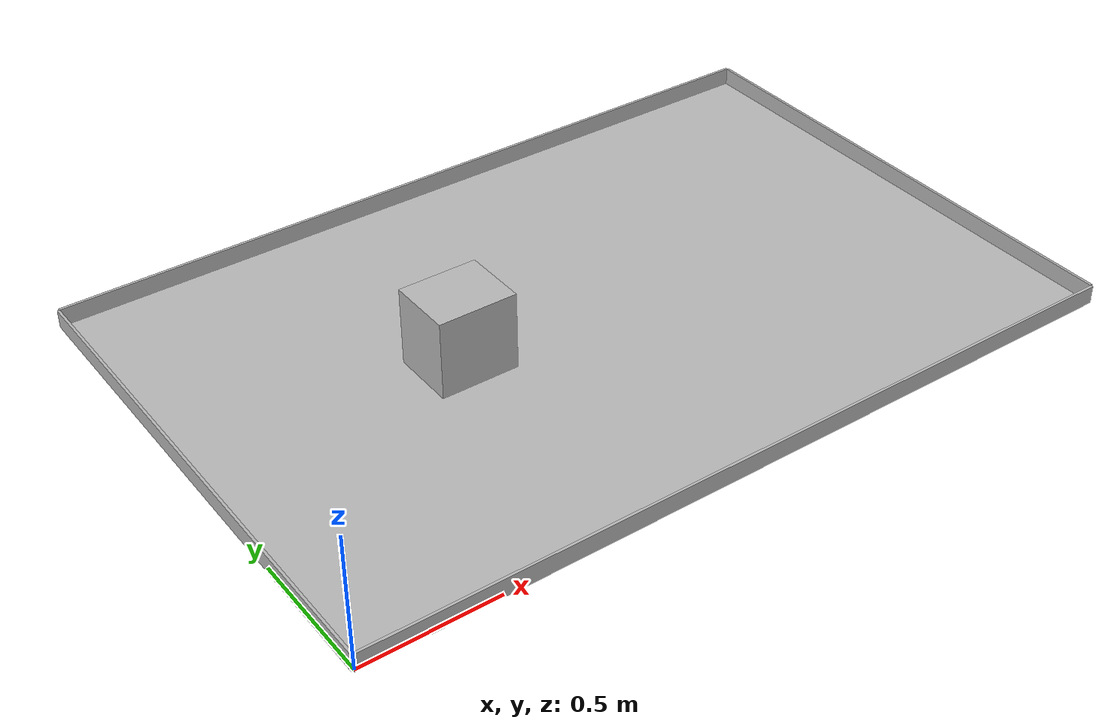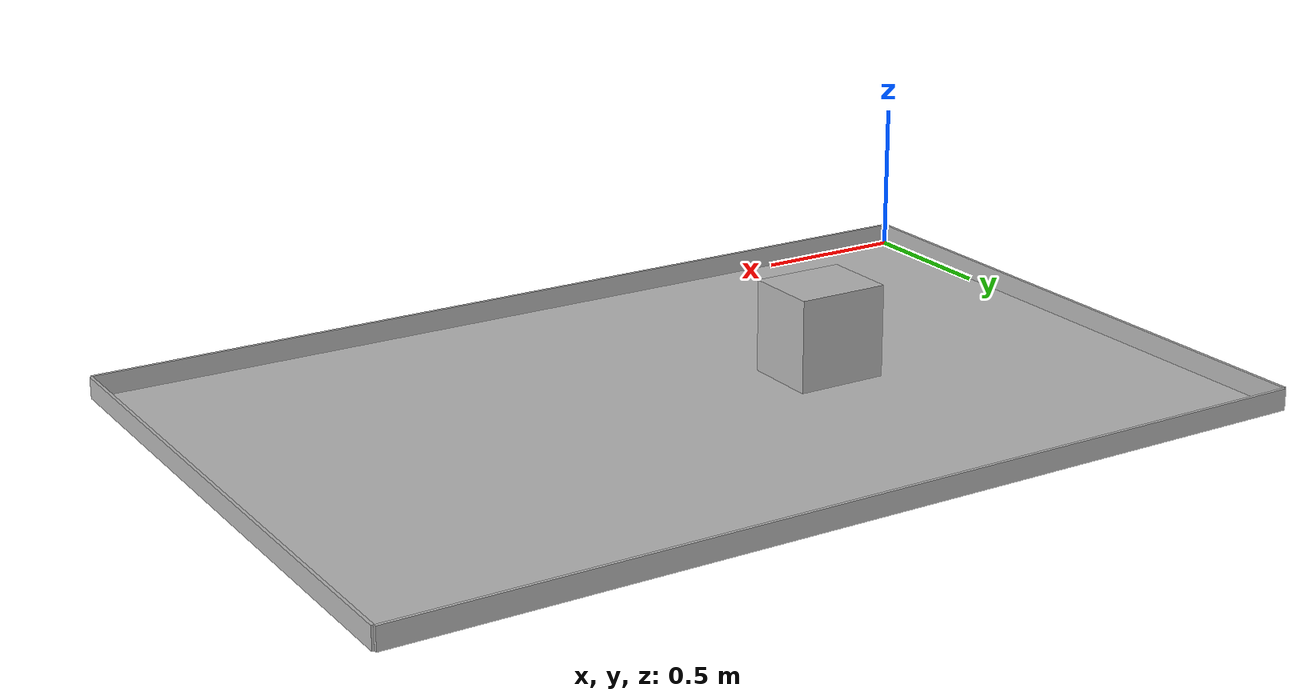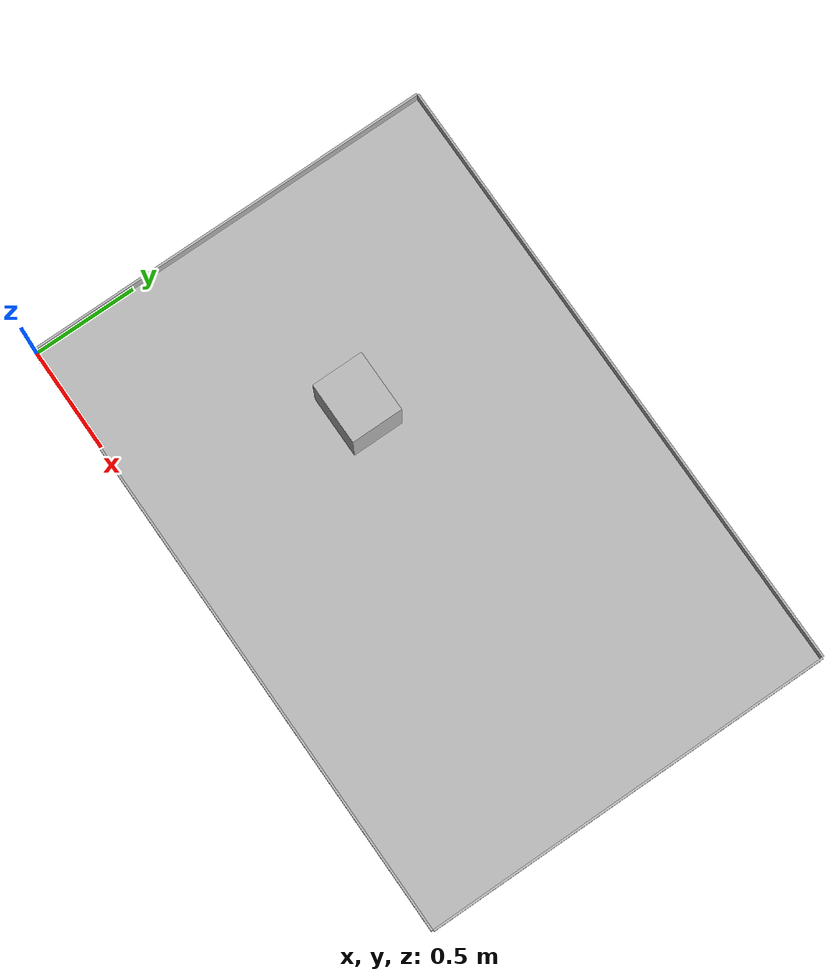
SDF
<sdf version='1.4'>
  <world name='rgsim'>
    <!-- A global light source -->
    <include>
      <uri>model://sun</uri>
    </include>

    <scene>
      <ambient>0.4 0.4 0.4 1</ambient>
      <background>0.7 0.7 0.7 1</background>
      <shadows>1</shadows>
    </scene>

    <include>
      <uri>model://arena</uri>
      <pose>0 0 0 0 0 0</pose>
    </include>

    <include>
      <uri>model://robot</uri>
      <pose>1 1 0 0 0 0</pose>
    </include>

    <gravity>0 0 -9.8</gravity>
    <magnetic_field>6e-06 2.3e-05 -4.2e-05</magnetic_field>
    <atmosphere type='adiabatic'/>

    <!-- WGS84 latlon coordinates -->
    <spherical_coordinates>
      <surface_model>EARTH_WGS84</surface_model>
      <latitude_deg>0</latitude_deg>
      <longitude_deg>0</longitude_deg>
      <elevation>0</elevation>
      <heading_deg>0</heading_deg>
    </spherical_coordinates>

    <physics name='default_physics' default='0' type='ode'>
      <max_step_size>0.001</max_step_size>
      <real_time_factor>1</real_time_factor>
      <real_time_update_rate>1000</real_time_update_rate>
    </physics>
  </world>
</sdf>

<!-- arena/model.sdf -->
<sdf version='1.6'>
  <model name='arena'>
    <static>1</static>

    <link name='ground'>
      <pose frame=''>1.5 1 0 0 0 0</pose>
      <collision name='collision'>
        <geometry>
          <plane>
            <normal>0 0 1</normal>
            <size>3 2</size>
          </plane>
        </geometry>
        <surface>
          <friction>
            <ode>
              <mu>100</mu>
              <mu2>50</mu2>
            </ode>
          </friction>
        </surface>
      </collision>
      <visual name='visual'>
        <cast_shadows>0</cast_shadows>
        <geometry>
          <plane>
            <normal>0 0 1</normal>
            <size>3 2</size>
          </plane>
        </geometry>
      </visual>
    </link>

    <link name='wall_1'>
      <pose>1.50 -0.005 0.035 0 0 0</pose>
      <visual name='visual'>
        <geometry>
          <box>
            <size>3.005 0.01 0.07</size>
          </box>
        </geometry>
      </visual>
      <collision name='collision'>
        <geometry>
          <box>
            <size>3.005 0.01 0.07</size>
          </box>
        </geometry>
      </collision>
    </link>

    <link name='wall_2'>
      <pose>1.50 2.005 0.035 0 0 0</pose>
      <visual name='visual'>
        <geometry>
          <box>
            <size>3.005 0.01 0.07</size>
          </box>
        </geometry>
      </visual>
      <collision name='collision'>
        <geometry>
          <box>
            <size>3.005 0.01 0.07</size>
          </box>
        </geometry>
      </collision>
    </link>

    <link name='wall_3'>
      <pose>-0.005 1 0.035 0 0 1.5708</pose>
      <visual name='visual'>
        <geometry>
          <box>
            <size>2 0.01 0.07</size>
          </box>
        </geometry>
        </visual>
      <collision name='collision'>
        <geometry>
          <box>
            <size>2 0.01 0.07</size>
          </box>
        </geometry>
        </collision>
    </link>

    <link name='wall_4'>
      <pose>3.005 1 0.035 0 -0 1.5708</pose>
      <visual name='visual'>
        <geometry>
          <box>
            <size>2 0.01 0.07</size>
          </box>
        </geometry>
      </visual>
      <collision name='collision'>
        <geometry>
          <box>
            <size>2 0.01 0.07</size>
          </box>
        </geometry>
      </collision>
    </link>
  </model>
</sdf>

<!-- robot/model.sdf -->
<sdf version='1.4'>
  <model name="robot">
    <static>false</static>

    <link name="chassis">
      <pose>0 0 .1 0 0 0</pose>
      <gravity>true</gravity>

      <inertial>
        <pose>0 0 0 0 0 0</pose>
        <mass>5</mass>
        <inertia>
          <ixx>0.092708</ixx>
          <ixy>0</ixy>
          <ixz>0</ixz>
          <iyy>0.104167</iyy>
          <iyz>0</iyz>
          <izz>0.063542</izz>
        </inertia>
      </inertial>

      <collision name="collision">
        <geometry>
          <box>
            <size>.3 .25 .4</size>
          </box>
        </geometry>
      </collision>

      <visual name="visual">
        <pose>0 0 0 0 0 0</pose>
        <geometry>
          <box>
            <size>.3 .25 .4</size>
          </box>
        </geometry>
      </visual>

      <collision name="caster_collision">
        <pose>-0.075 0 -0.2 0 0 0</pose>
        <geometry>
          <sphere>
            <radius>.05</radius>
          </sphere>
        </geometry>

        <surface>
          <friction>
            <ode>
              <mu>0</mu>
              <mu2>0</mu2>
              <slip1>1.0</slip1>
              <slip2>1.0</slip2>
            </ode>
          </friction>
        </surface>
      </collision>

      <visual name="caster_visual">
        <pose>-0.075 0 -0.2 0 0 0</pose>
        <geometry>
          <sphere>
            <radius>.05</radius>
          </sphere>
        </geometry>
      </visual>
    </link>

    <link name="left_wheel">
      <pose>0.1 0.13 -0.1 0 1.5707 1.5707</pose>
      <gravity>true</gravity>

      <inertial>
        <pose>0 0 0 0 0 0</pose>
        <mass>0.3</mass>
        <inertia>
          <ixx>0.00025</ixx>
          <ixy>0</ixy>
          <ixz>0</ixz>
          <iyy>0.00025</iyy>
          <iyz>0</iyz>
          <izz>0.000375</izz>
        </inertia>
      </inertial>

      <collision name="collision">
        <geometry>
          <cylinder>
            <radius>.05</radius>
            <length>.05</length>
          </cylinder>
        </geometry>
      </collision>

      <visual name="visual">
        <geometry>
          <cylinder>
            <radius>.05</radius>
            <length>.05</length>
          </cylinder>
        </geometry>
      </visual>
    </link>

    <joint type="revolute" name="left_wheel_hinge">
      <child>left_wheel</child>
      <parent>chassis</parent>
      <axis>
        <xyz>0 1 0</xyz>
      </axis>
    </joint>

    <link name="left_encoder_wheel">
      <pose>0.1 0.1 -0.1 0 1.5707 1.5707</pose>
      <gravity>true</gravity>

      <inertial>
        <pose>0 0 0 0 0 0</pose>
        <mass>0.03</mass>
        <inertia>
          <ixx>0.000019</ixx>
          <ixy>0</ixy>
          <ixz>0</ixz>
          <iyy>0.000019</iyy>
          <iyz>0</iyz>
          <izz>0.000038</izz>
        </inertia>
      </inertial>

      <collision name="collision">
        <geometry>
          <cylinder>
            <radius>.05</radius>
            <length>.005</length>
          </cylinder>
        </geometry>

        <surface>
          <friction>
            <ode>
              <mu>1</mu>
              <mu2>1</mu2>
              <slip1>0</slip1>
              <slip2>0</slip2>
            </ode>
          </friction>
        </surface>
      </collision>

      <visual name="visual">
        <geometry>
          <cylinder>
            <radius>.05</radius>
            <length>.005</length>
          </cylinder>
        </geometry>
      </visual>
    </link>

    <joint type="revolute" name="left_encoder">
      <child>left_encoder_wheel</child>
      <parent>chassis</parent>
      <axis>
        <xyz>0 1 0</xyz>
      </axis>
    </joint>

    <link name="right_wheel">
      <pose>0.1 -0.13 -0.1 0 1.5707 1.5707</pose>
      <gravity>true</gravity>

      <inertial>
        <pose>0 0 0 0 0 0</pose>
        <mass>0.3</mass>
        <inertia>
          <ixx>0.00025</ixx>
          <ixy>0</ixy>
          <ixz>0</ixz>
          <iyy>0.00025</iyy>
          <iyz>0</iyz>
          <izz>0.000375</izz>
        </inertia>
      </inertial>

      <collision name="collision">
        <geometry>
          <cylinder>
            <radius>.05</radius>
            <length>.05</length>
          </cylinder>
        </geometry>
      </collision>

      <visual name="visual">
        <geometry>
          <cylinder>
            <radius>.05</radius>
            <length>.05</length>
          </cylinder>
        </geometry>
      </visual>
    </link>

    <joint type="revolute" name="right_wheel_hinge">
      <child>right_wheel</child>
      <parent>chassis</parent>
      <axis>
        <xyz>0 1 0</xyz>
      </axis>
    </joint>

    <link name="right_encoder_wheel">
      <pose>0.1 -0.1 -0.1 0 1.5707 1.5707</pose>
      <gravity>true</gravity>

      <inertial>
        <pose>0 0 0 0 0 0</pose>
        <mass>0.03</mass>
        <inertia>
          <ixx>0.000019</ixx>
          <ixy>0</ixy>
          <ixz>0</ixz>
          <iyy>0.000019</iyy>
          <iyz>0</iyz>
          <izz>0.000038</izz>
        </inertia>
      </inertial>

      <collision name="collision">
        <geometry>
          <cylinder>
            <radius>.05</radius>
            <length>.005</length>
          </cylinder>
        </geometry>

        <surface>
          <friction>
            <ode>
              <mu>1</mu>
              <mu2>1</mu2>
              <slip1>0</slip1>
              <slip2>0</slip2>
            </ode>
          </friction>
        </surface>
      </collision>

      <visual name="visual">
        <geometry>
          <cylinder>
            <radius>.05</radius>
            <length>.005</length>
          </cylinder>
        </geometry>
      </visual>
    </link>

    <joint type="revolute" name="right_encoder">
      <child>right_encoder_wheel</child>
      <parent>chassis</parent>
      <axis>
        <xyz>0 1 0</xyz>
      </axis>
    </joint>

    <plugin name="encoder" filename="libencoder_plugin.so">
      <topic>~/encoders</topic>
    </plugin>

    <plugin name="motor_plugin" filename="libmotor_plugin.so">
      <topic>~/motors_control</topic>
      <multiplier>1</multiplier>
    </plugin>
  </model>
</sdf>
